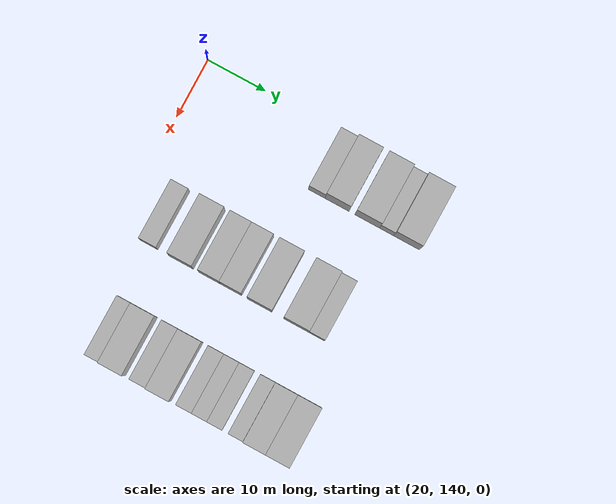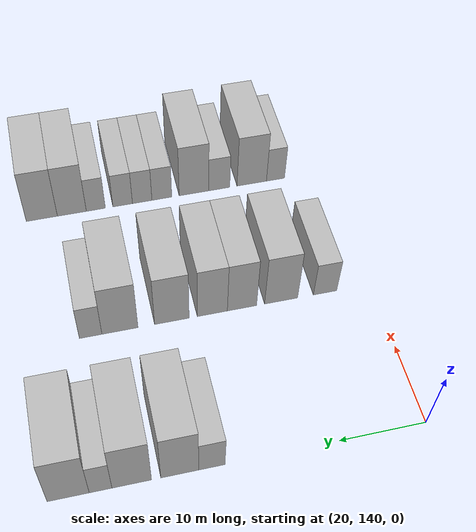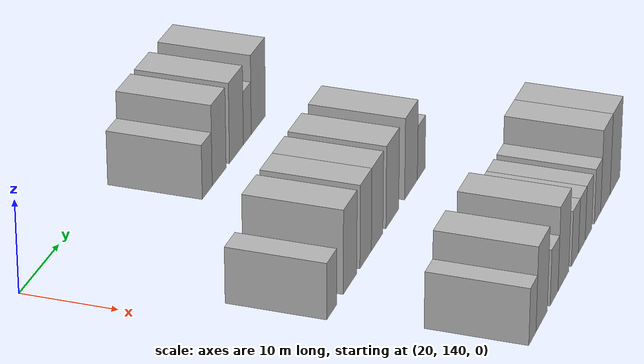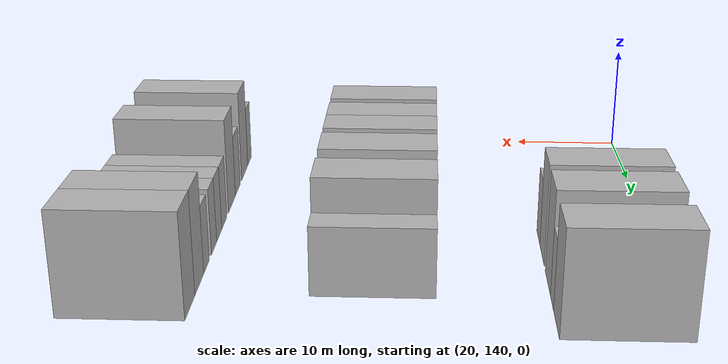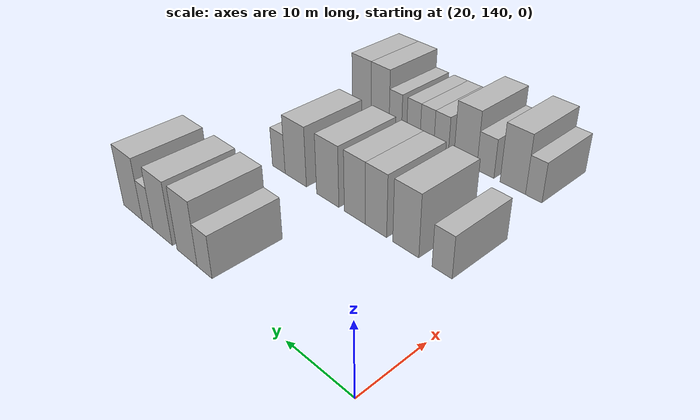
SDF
<sdf version="1.6">
 <world name="default">
  <model name="building_98">
   <static>1</static>
   <pose>25.0000 164.2825 0 0.000000 0.000000 0.000000</pose>
   <link name="link">
    <pose>0 0 3.00 0 0 0</pose>
    <collision name="collision"><geometry><box><size>10.0000 2.8976 6.0000</size></box></geometry></collision>
    <visual name="visual">
     <cast_shadows>0</cast_shadows>
     <geometry><box><size>10.0000 2.8976 6.0000</size></box></geometry>
     <material>
      <script>
       <uri>model://HANNAS_wall/materials/scripts</uri>
       <uri>model://HANNAS_wall/materials/textures</uri>
       <name>vrc/HANNAS_wall</name>
      </script>
     </material>
    </visual>
   </link>
  </model>
  <model name="building_99">
   <static>1</static>
   <pose>25.0000 167.7879 0 0.000000 0.000000 0.000000</pose>
   <link name="link">
    <pose>0 0 4.50 0 0 0</pose>
    <collision name="collision"><geometry><box><size>10.0000 4.1133 9.0000</size></box></geometry></collision>
    <visual name="visual">
     <cast_shadows>0</cast_shadows>
     <geometry><box><size>10.0000 4.1133 9.0000</size></box></geometry>
     <material>
      <script>
       <uri>model://HANNAS_wall/materials/scripts</uri>
       <uri>model://HANNAS_wall/materials/textures</uri>
       <name>vrc/HANNAS_wall</name>
      </script>
     </material>
    </visual>
   </link>
  </model>
  <model name="building_100">
   <static>1</static>
   <pose>25.0000 172.9666 0 0.000000 0.000000 0.000000</pose>
   <link name="link">
    <pose>0 0 4.50 0 0 0</pose>
    <collision name="collision"><geometry><box><size>10.0000 4.2440 9.0000</size></box></geometry></collision>
    <visual name="visual">
     <cast_shadows>0</cast_shadows>
     <geometry><box><size>10.0000 4.2440 9.0000</size></box></geometry>
     <material>
      <script>
       <uri>model://HANNAS_wall/materials/scripts</uri>
       <uri>model://HANNAS_wall/materials/textures</uri>
       <name>vrc/HANNAS_wall</name>
      </script>
     </material>
    </visual>
   </link>
  </model>
  <model name="building_101">
   <static>1</static>
   <pose>25.0000 176.2978 0 0.000000 0.000000 0.000000</pose>
   <link name="link">
    <pose>0 0 3.00 0 0 0</pose>
    <collision name="collision"><geometry><box><size>10.0000 2.4184 6.0000</size></box></geometry></collision>
    <visual name="visual">
     <cast_shadows>0</cast_shadows>
     <geometry><box><size>10.0000 2.4184 6.0000</size></box></geometry>
     <material>
      <script>
       <uri>model://HANNAS_wall/materials/scripts</uri>
       <uri>model://HANNAS_wall/materials/textures</uri>
       <name>vrc/HANNAS_wall</name>
      </script>
     </material>
    </visual>
   </link>
  </model>
  <model name="building_102">
   <static>1</static>
   <pose>25.0000 179.7274 0 0.000000 0.000000 0.000000</pose>
   <link name="link">
    <pose>0 0 4.50 0 0 0</pose>
    <collision name="collision"><geometry><box><size>10.0000 4.4408 9.0000</size></box></geometry></collision>
    <visual name="visual">
     <cast_shadows>0</cast_shadows>
     <geometry><box><size>10.0000 4.4408 9.0000</size></box></geometry>
     <material>
      <script>
       <uri>model://HANNAS_wall/materials/scripts</uri>
       <uri>model://HANNAS_wall/materials/textures</uri>
       <name>vrc/HANNAS_wall</name>
      </script>
     </material>
    </visual>
   </link>
  </model>
  <model name="building_214">
   <static>1</static>
   <pose>44.0000 145.7861 0 0.000000 0.000000 0.000000</pose>
   <link name="link">
    <pose>0 0 3.00 0 0 0</pose>
    <collision name="collision"><geometry><box><size>10.0000 2.9692 6.0000</size></box></geometry></collision>
    <visual name="visual">
     <cast_shadows>0</cast_shadows>
     <geometry><box><size>10.0000 2.9692 6.0000</size></box></geometry>
     <material>
      <script>
       <uri>model://HANNAS_wall/materials/scripts</uri>
       <uri>model://HANNAS_wall/materials/textures</uri>
       <name>vrc/HANNAS_wall</name>
      </script>
     </material>
    </visual>
   </link>
  </model>
  <model name="building_215">
   <static>1</static>
   <pose>44.0000 151.3429 0 0.000000 0.000000 0.000000</pose>
   <link name="link">
    <pose>0 0 4.50 0 0 0</pose>
    <collision name="collision"><geometry><box><size>10.0000 4.1444 9.0000</size></box></geometry></collision>
    <visual name="visual">
     <cast_shadows>0</cast_shadows>
     <geometry><box><size>10.0000 4.1444 9.0000</size></box></geometry>
     <material>
      <script>
       <uri>model://HANNAS_wall/materials/scripts</uri>
       <uri>model://HANNAS_wall/materials/textures</uri>
       <name>vrc/HANNAS_wall</name>
      </script>
     </material>
    </visual>
   </link>
  </model>
  <model name="building_216">
   <static>1</static>
   <pose>44.0000 156.2304 0 0.000000 0.000000 0.000000</pose>
   <link name="link">
    <pose>0 0 4.50 0 0 0</pose>
    <collision name="collision"><geometry><box><size>10.0000 3.6306 9.0000</size></box></geometry></collision>
    <visual name="visual">
     <cast_shadows>0</cast_shadows>
     <geometry><box><size>10.0000 3.6306 9.0000</size></box></geometry>
     <material>
      <script>
       <uri>model://HANNAS_wall/materials/scripts</uri>
       <uri>model://HANNAS_wall/materials/textures</uri>
       <name>vrc/HANNAS_wall</name>
      </script>
     </material>
    </visual>
   </link>
  </model>
  <model name="building_217">
   <static>1</static>
   <pose>44.0000 159.8955 0 0.000000 0.000000 0.000000</pose>
   <link name="link">
    <pose>0 0 4.50 0 0 0</pose>
    <collision name="collision"><geometry><box><size>10.0000 3.6997 9.0000</size></box></geometry></collision>
    <visual name="visual">
     <cast_shadows>0</cast_shadows>
     <geometry><box><size>10.0000 3.6997 9.0000</size></box></geometry>
     <material>
      <script>
       <uri>model://HANNAS_wall/materials/scripts</uri>
       <uri>model://HANNAS_wall/materials/textures</uri>
       <name>vrc/HANNAS_wall</name>
      </script>
     </material>
    </visual>
   </link>
  </model>
  <model name="building_218">
   <static>1</static>
   <pose>44.0000 164.8458 0 0.000000 0.000000 0.000000</pose>
   <link name="link">
    <pose>0 0 4.50 0 0 0</pose>
    <collision name="collision"><geometry><box><size>10.0000 4.2008 9.0000</size></box></geometry></collision>
    <visual name="visual">
     <cast_shadows>0</cast_shadows>
     <geometry><box><size>10.0000 4.2008 9.0000</size></box></geometry>
     <material>
      <script>
       <uri>model://HANNAS_wall/materials/scripts</uri>
       <uri>model://HANNAS_wall/materials/textures</uri>
       <name>vrc/HANNAS_wall</name>
      </script>
     </material>
    </visual>
   </link>
  </model>
  <model name="building_219">
   <static>1</static>
   <pose>44.0000 171.1092 0 0.000000 0.000000 0.000000</pose>
   <link name="link">
    <pose>0 0 4.50 0 0 0</pose>
    <collision name="collision"><geometry><box><size>10.0000 4.3261 9.0000</size></box></geometry></collision>
    <visual name="visual">
     <cast_shadows>0</cast_shadows>
     <geometry><box><size>10.0000 4.3261 9.0000</size></box></geometry>
     <material>
      <script>
       <uri>model://HANNAS_wall/materials/scripts</uri>
       <uri>model://HANNAS_wall/materials/textures</uri>
       <name>vrc/HANNAS_wall</name>
      </script>
     </material>
    </visual>
   </link>
  </model>
  <model name="building_220">
   <static>1</static>
   <pose>44.0000 174.6132 0 0.000000 0.000000 0.000000</pose>
   <link name="link">
    <pose>0 0 3.00 0 0 0</pose>
    <collision name="collision"><geometry><box><size>10.0000 2.6818 6.0000</size></box></geometry></collision>
    <visual name="visual">
     <cast_shadows>0</cast_shadows>
     <geometry><box><size>10.0000 2.6818 6.0000</size></box></geometry>
     <material>
      <script>
       <uri>model://HANNAS_wall/materials/scripts</uri>
       <uri>model://HANNAS_wall/materials/textures</uri>
       <name>vrc/HANNAS_wall</name>
      </script>
     </material>
    </visual>
   </link>
  </model>
  <model name="building_329">
   <static>1</static>
   <pose>63.0000 146.8783 0 0.000000 0.000000 0.000000</pose>
   <link name="link">
    <pose>0 0 3.00 0 0 0</pose>
    <collision name="collision"><geometry><box><size>10.0000 2.5084 6.0000</size></box></geometry></collision>
    <visual name="visual">
     <cast_shadows>0</cast_shadows>
     <geometry><box><size>10.0000 2.5084 6.0000</size></box></geometry>
     <material>
      <script>
       <uri>model://HANNAS_wall/materials/scripts</uri>
       <uri>model://HANNAS_wall/materials/textures</uri>
       <name>vrc/HANNAS_wall</name>
      </script>
     </material>
    </visual>
   </link>
  </model>
  <model name="building_330">
   <static>1</static>
   <pose>63.0000 150.1618 0 0.000000 0.000000 0.000000</pose>
   <link name="link">
    <pose>0 0 4.50 0 0 0</pose>
    <collision name="collision"><geometry><box><size>10.0000 4.0586 9.0000</size></box></geometry></collision>
    <visual name="visual">
     <cast_shadows>0</cast_shadows>
     <geometry><box><size>10.0000 4.0586 9.0000</size></box></geometry>
     <material>
      <script>
       <uri>model://HANNAS_wall/materials/scripts</uri>
       <uri>model://HANNAS_wall/materials/textures</uri>
       <name>vrc/HANNAS_wall</name>
      </script>
     </material>
    </visual>
   </link>
  </model>
  <model name="building_331">
   <static>1</static>
   <pose>63.0000 154.6353 0 0.000000 0.000000 0.000000</pose>
   <link name="link">
    <pose>0 0 3.00 0 0 0</pose>
    <collision name="collision"><geometry><box><size>10.0000 2.8884 6.0000</size></box></geometry></collision>
    <visual name="visual">
     <cast_shadows>0</cast_shadows>
     <geometry><box><size>10.0000 2.8884 6.0000</size></box></geometry>
     <material>
      <script>
       <uri>model://HANNAS_wall/materials/scripts</uri>
       <uri>model://HANNAS_wall/materials/textures</uri>
       <name>vrc/HANNAS_wall</name>
      </script>
     </material>
    </visual>
   </link>
  </model>
  <model name="building_332">
   <static>1</static>
   <pose>63.0000 158.0744 0 0.000000 0.000000 0.000000</pose>
   <link name="link">
    <pose>0 0 4.50 0 0 0</pose>
    <collision name="collision"><geometry><box><size>10.0000 3.9897 9.0000</size></box></geometry></collision>
    <visual name="visual">
     <cast_shadows>0</cast_shadows>
     <geometry><box><size>10.0000 3.9897 9.0000</size></box></geometry>
     <material>
      <script>
       <uri>model://HANNAS_wall/materials/scripts</uri>
       <uri>model://HANNAS_wall/materials/textures</uri>
       <name>vrc/HANNAS_wall</name>
      </script>
     </material>
    </visual>
   </link>
  </model>
  <model name="building_333">
   <static>1</static>
   <pose>63.0000 162.4039 0 0.000000 0.000000 0.000000</pose>
   <link name="link">
    <pose>0 0 3.00 0 0 0</pose>
    <collision name="collision"><geometry><box><size>10.0000 2.6693 6.0000</size></box></geometry></collision>
    <visual name="visual">
     <cast_shadows>0</cast_shadows>
     <geometry><box><size>10.0000 2.6693 6.0000</size></box></geometry>
     <material>
      <script>
       <uri>model://HANNAS_wall/materials/scripts</uri>
       <uri>model://HANNAS_wall/materials/textures</uri>
       <name>vrc/HANNAS_wall</name>
      </script>
     </material>
    </visual>
   </link>
  </model>
  <model name="building_334">
   <static>1</static>
   <pose>63.0000 165.0365 0 0.000000 0.000000 0.000000</pose>
   <link name="link">
    <pose>0 0 3.00 0 0 0</pose>
    <collision name="collision"><geometry><box><size>10.0000 2.5960 6.0000</size></box></geometry></collision>
    <visual name="visual">
     <cast_shadows>0</cast_shadows>
     <geometry><box><size>10.0000 2.5960 6.0000</size></box></geometry>
     <material>
      <script>
       <uri>model://HANNAS_wall/materials/scripts</uri>
       <uri>model://HANNAS_wall/materials/textures</uri>
       <name>vrc/HANNAS_wall</name>
      </script>
     </material>
    </visual>
   </link>
  </model>
  <model name="building_335">
   <static>1</static>
   <pose>63.0000 167.6328 0 0.000000 0.000000 0.000000</pose>
   <link name="link">
    <pose>0 0 3.00 0 0 0</pose>
    <collision name="collision"><geometry><box><size>10.0000 2.5965 6.0000</size></box></geometry></collision>
    <visual name="visual">
     <cast_shadows>0</cast_shadows>
     <geometry><box><size>10.0000 2.5965 6.0000</size></box></geometry>
     <material>
      <script>
       <uri>model://HANNAS_wall/materials/scripts</uri>
       <uri>model://HANNAS_wall/materials/textures</uri>
       <name>vrc/HANNAS_wall</name>
      </script>
     </material>
    </visual>
   </link>
  </model>
  <model name="building_336">
   <static>1</static>
   <pose>63.0000 171.1869 0 0.000000 0.000000 0.000000</pose>
   <link name="link">
    <pose>0 0 3.00 0 0 0</pose>
    <collision name="collision"><geometry><box><size>10.0000 2.5119 6.0000</size></box></geometry></collision>
    <visual name="visual">
     <cast_shadows>0</cast_shadows>
     <geometry><box><size>10.0000 2.5119 6.0000</size></box></geometry>
     <material>
      <script>
       <uri>model://HANNAS_wall/materials/scripts</uri>
       <uri>model://HANNAS_wall/materials/textures</uri>
       <name>vrc/HANNAS_wall</name>
      </script>
     </material>
    </visual>
   </link>
  </model>
  <model name="building_337">
   <static>1</static>
   <pose>63.0000 174.3377 0 0.000000 0.000000 0.000000</pose>
   <link name="link">
    <pose>0 0 4.50 0 0 0</pose>
    <collision name="collision"><geometry><box><size>10.0000 3.7897 9.0000</size></box></geometry></collision>
    <visual name="visual">
     <cast_shadows>0</cast_shadows>
     <geometry><box><size>10.0000 3.7897 9.0000</size></box></geometry>
     <material>
      <script>
       <uri>model://HANNAS_wall/materials/scripts</uri>
       <uri>model://HANNAS_wall/materials/textures</uri>
       <name>vrc/HANNAS_wall</name>
      </script>
     </material>
    </visual>
   </link>
  </model>
  <model name="building_338">
   <static>1</static>
   <pose>63.0000 178.2519 0 0.000000 0.000000 0.000000</pose>
   <link name="link">
    <pose>0 0 4.50 0 0 0</pose>
    <collision name="collision"><geometry><box><size>10.0000 4.0386 9.0000</size></box></geometry></collision>
    <visual name="visual">
     <cast_shadows>0</cast_shadows>
     <geometry><box><size>10.0000 4.0386 9.0000</size></box></geometry>
     <material>
      <script>
       <uri>model://HANNAS_wall/materials/scripts</uri>
       <uri>model://HANNAS_wall/materials/textures</uri>
       <name>vrc/HANNAS_wall</name>
      </script>
     </material>
    </visual>
   </link>
  </model>
 </world>
</sdf>
